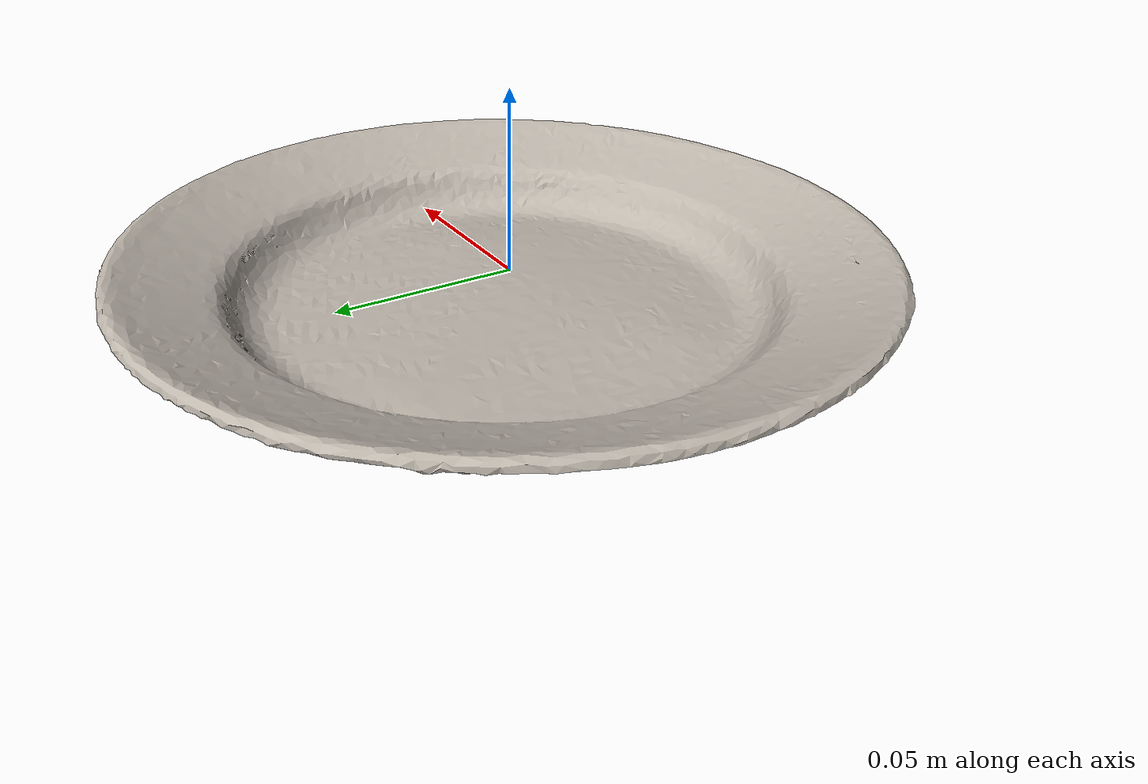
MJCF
<mujoco model="bread">
  <asset>
    <mesh file="nontextured.stl" name="obj_mesh" scale="0.8 0.8 0.8"/>
    <texture file="../../../../../textures/bread.png" type="2d" name="tex-bread" />
    <material name="bread" reflectance="0.7" texrepeat="15 15" texture="tex-bread" texuniform="true"/>
  </asset>
  <worldbody>
    <body>
      <body name="collision">
        <geom pos="0.011620999999999992 -1.5999999999988246e-05 -0.0102525" mesh="obj_mesh" type="mesh" solimp="0.998 0.998 0.001" solref="0.001 1" density="50" friction="0.95 0.3 0.1"  material="bread" group="1" condim="4"/>
      </body>
      <body name="visual">
        <geom pos="0.011620999999999992 -1.5999999999988246e-05 -0.0102525" mesh="obj_mesh" type="mesh" material="bread"  conaffinity="0" contype="0"  group="0" mass="0.0001"/>
        <geom pos="0.011620999999999992 -1.5999999999988246e-05 -0.0102525" mesh="obj_mesh" type="mesh" material="bread"  conaffinity="0" contype="0"  group="1" mass="0.0001"/>
      </body>
      <site rgba="0 0 0 0" size="0.005" pos="0 0 -0.0133615" name="bottom_site"/>
      <site rgba="0 0 0 0" size="0.005" pos="0 0 0.0133615" name="top_site"/>
      <site rgba="0 0 0 0" size="0.005" pos="0.130075 0.130551 0.0133615" name="horizontal_radius_site"/>
    </body>
  </worldbody>
</mujoco>
